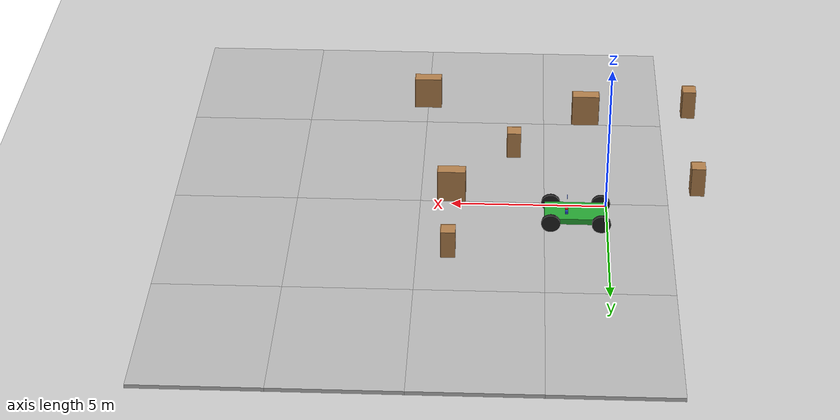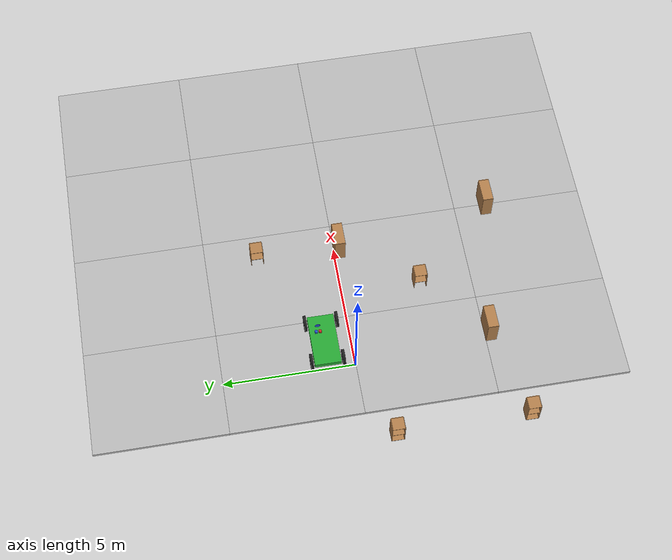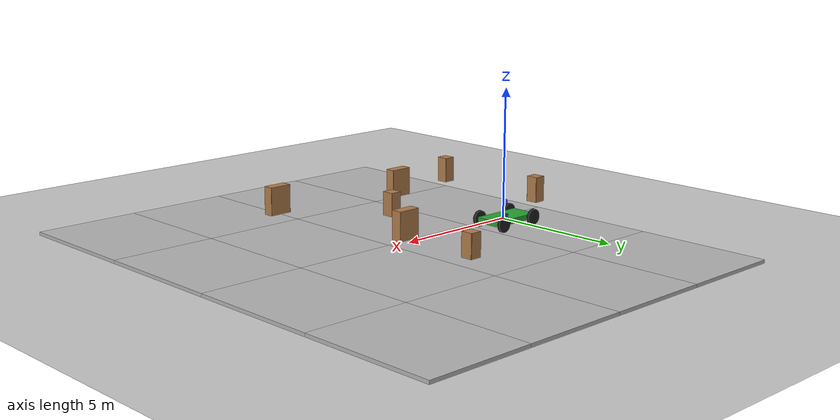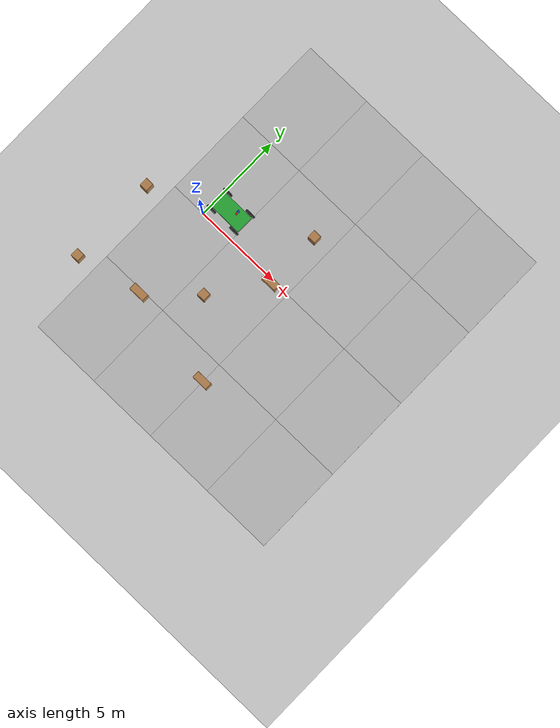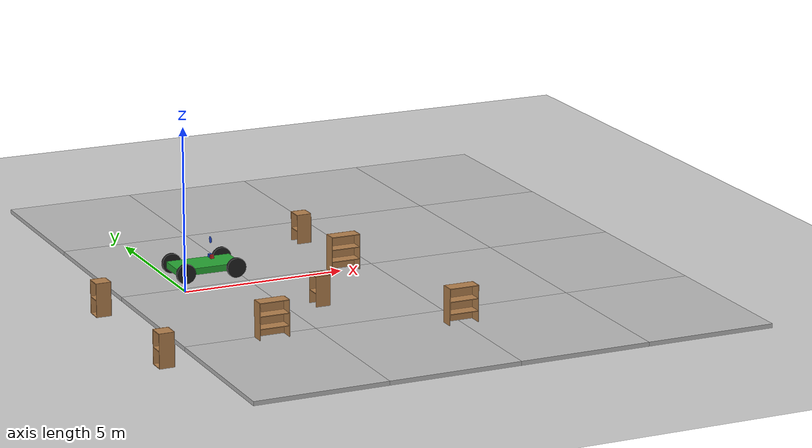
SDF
<sdf version="1.4">
 <world name="default">
  <model name="ground_plane">
   <static>1</static>
   <link name="link">
    <collision name="collision">
     <geometry><plane><normal>0 0 1</normal><size>100 100</size></plane></geometry>
     <surface><friction><ode><mu>100</mu><mu2>50</mu2></ode></friction></surface>
    </collision>
    <visual name="visual">
     <cast_shadows>0</cast_shadows>
     <geometry><plane><normal>0 0 1</normal><size>100 100</size></plane></geometry>
     <material>
      <script><uri>file://media/materials/scripts/gazebo.material</uri><name>Gazebo/Grey</name></script>
     </material>
    </visual>
    <velocity_decay><linear>0</linear><angular>0</angular></velocity_decay>
   </link>
  </model>
  <model name="mud_box_1">
   <static>1</static>
   <link name="link">
    <collision name="collision"><geometry><box><size>8 10 0.2</size></box></geometry></collision>
    <visual name="visual_1">
     <pose>-2 2.5 0 0 -0 0</pose>
     <cast_shadows>0</cast_shadows>
     <geometry><box><size>4 5 0.2</size></box></geometry>
     <material>
      <script>
       <uri>model://mud_box/materials/scripts</uri>
       <uri>model://mud_box/materials/textures</uri>
       <name>vrc/mud</name>
      </script>
     </material>
    </visual>
    <visual name="visual_2">
     <pose>2 2.5 0 0 -0 0</pose>
     <cast_shadows>0</cast_shadows>
     <geometry><box><size>4 5 0.2</size></box></geometry>
     <material>
      <script>
       <uri>model://mud_box/materials/scripts</uri>
       <uri>model://mud_box/materials/textures</uri>
       <name>vrc/mud</name>
      </script>
     </material>
    </visual>
    <visual name="visual_3">
     <pose>2 -2.5 0 0 -0 0</pose>
     <cast_shadows>0</cast_shadows>
     <geometry><box><size>4 5 0.2</size></box></geometry>
     <material>
      <script>
       <uri>model://mud_box/materials/scripts</uri>
       <uri>model://mud_box/materials/textures</uri>
       <name>vrc/mud</name>
      </script>
     </material>
    </visual>
    <visual name="visual_4">
     <pose>-2 -2.5 0 0 -0 0</pose>
     <cast_shadows>0</cast_shadows>
     <geometry><box><size>4 5 0.2</size></box></geometry>
     <material>
      <script>
       <uri>model://mud_box/materials/scripts</uri>
       <uri>model://mud_box/materials/textures</uri>
       <name>vrc/mud</name>
      </script>
     </material>
    </visual>
    <velocity_decay><linear>0</linear><angular>0</angular></velocity_decay>
   </link>
   <pose>2 5 0 0 -0 0</pose>
  </model>
  <model name="mud_box_2">
   <static>1</static>
   <link name="link">
    <collision name="collision"><geometry><box><size>8 10 0.2</size></box></geometry></collision>
    <visual name="visual_1">
     <pose>-2 2.5 0 0 -0 0</pose>
     <cast_shadows>0</cast_shadows>
     <geometry><box><size>4 5 0.2</size></box></geometry>
     <material>
      <script>
       <uri>model://mud_box/materials/scripts</uri>
       <uri>model://mud_box/materials/textures</uri>
       <name>vrc/mud</name>
      </script>
     </material>
    </visual>
    <visual name="visual_2">
     <pose>2 2.5 0 0 -0 0</pose>
     <cast_shadows>0</cast_shadows>
     <geometry><box><size>4 5 0.2</size></box></geometry>
     <material>
      <script>
       <uri>model://mud_box/materials/scripts</uri>
       <uri>model://mud_box/materials/textures</uri>
       <name>vrc/mud</name>
      </script>
     </material>
    </visual>
    <visual name="visual_3">
     <pose>2 -2.5 0 0 -0 0</pose>
     <cast_shadows>0</cast_shadows>
     <geometry><box><size>4 5 0.2</size></box></geometry>
     <material>
      <script>
       <uri>model://mud_box/materials/scripts</uri>
       <uri>model://mud_box/materials/textures</uri>
       <name>vrc/mud</name>
      </script>
     </material>
    </visual>
    <visual name="visual_4">
     <pose>-2 -2.5 0 0 -0 0</pose>
     <cast_shadows>0</cast_shadows>
     <geometry><box><size>4 5 0.2</size></box></geometry>
     <material>
      <script>
       <uri>model://mud_box/materials/scripts</uri>
       <uri>model://mud_box/materials/textures</uri>
       <name>vrc/mud</name>
      </script>
     </material>
    </visual>
    <velocity_decay><linear>0</linear><angular>0</angular></velocity_decay>
   </link>
   <pose>2 -5 0 0 -0 0</pose>
  </model>
  <model name="mud_box_3">
   <static>1</static>
   <link name="link">
    <collision name="collision"><geometry><box><size>8 10 0.2</size></box></geometry></collision>
    <visual name="visual_1">
     <pose>-2 2.5 0 0 -0 0</pose>
     <cast_shadows>0</cast_shadows>
     <geometry><box><size>4 5 0.2</size></box></geometry>
     <material>
      <script>
       <uri>model://mud_box/materials/scripts</uri>
       <uri>model://mud_box/materials/textures</uri>
       <name>vrc/mud</name>
      </script>
     </material>
    </visual>
    <visual name="visual_2">
     <pose>2 2.5 0 0 -0 0</pose>
     <cast_shadows>0</cast_shadows>
     <geometry><box><size>4 5 0.2</size></box></geometry>
     <material>
      <script>
       <uri>model://mud_box/materials/scripts</uri>
       <uri>model://mud_box/materials/textures</uri>
       <name>vrc/mud</name>
      </script>
     </material>
    </visual>
    <visual name="visual_3">
     <pose>2 -2.5 0 0 -0 0</pose>
     <cast_shadows>0</cast_shadows>
     <geometry><box><size>4 5 0.2</size></box></geometry>
     <material>
      <script>
       <uri>model://mud_box/materials/scripts</uri>
       <uri>model://mud_box/materials/textures</uri>
       <name>vrc/mud</name>
      </script>
     </material>
    </visual>
    <visual name="visual_4">
     <pose>-2 -2.5 0 0 -0 0</pose>
     <cast_shadows>0</cast_shadows>
     <geometry><box><size>4 5 0.2</size></box></geometry>
     <material>
      <script>
       <uri>model://mud_box/materials/scripts</uri>
       <uri>model://mud_box/materials/textures</uri>
       <name>vrc/mud</name>
      </script>
     </material>
    </visual>
    <velocity_decay><linear>0</linear><angular>0</angular></velocity_decay>
   </link>
   <pose>10 5 0 0 -0 0</pose>
  </model>
  <model name="mud_box_4">
   <static>1</static>
   <link name="link">
    <collision name="collision"><geometry><box><size>8 10 0.2</size></box></geometry></collision>
    <visual name="visual_1">
     <pose>-2 2.5 0 0 -0 0</pose>
     <cast_shadows>0</cast_shadows>
     <geometry><box><size>4 5 0.2</size></box></geometry>
     <material>
      <script>
       <uri>model://mud_box/materials/scripts</uri>
       <uri>model://mud_box/materials/textures</uri>
       <name>vrc/mud</name>
      </script>
     </material>
    </visual>
    <visual name="visual_2">
     <pose>2 2.5 0 0 -0 0</pose>
     <cast_shadows>0</cast_shadows>
     <geometry><box><size>4 5 0.2</size></box></geometry>
     <material>
      <script>
       <uri>model://mud_box/materials/scripts</uri>
       <uri>model://mud_box/materials/textures</uri>
       <name>vrc/mud</name>
      </script>
     </material>
    </visual>
    <visual name="visual_3">
     <pose>2 -2.5 0 0 -0 0</pose>
     <cast_shadows>0</cast_shadows>
     <geometry><box><size>4 5 0.2</size></box></geometry>
     <material>
      <script>
       <uri>model://mud_box/materials/scripts</uri>
       <uri>model://mud_box/materials/textures</uri>
       <name>vrc/mud</name>
      </script>
     </material>
    </visual>
    <visual name="visual_4">
     <pose>-2 -2.5 0 0 -0 0</pose>
     <cast_shadows>0</cast_shadows>
     <geometry><box><size>4 5 0.2</size></box></geometry>
     <material>
      <script>
       <uri>model://mud_box/materials/scripts</uri>
       <uri>model://mud_box/materials/textures</uri>
       <name>vrc/mud</name>
      </script>
     </material>
    </visual>
    <velocity_decay><linear>0</linear><angular>0</angular></velocity_decay>
   </link>
   <pose>10 -5 0 0 -0 0</pose>
  </model>
  <model name="cabinet_0">
   <static>1</static>
   <link name="cabinet_bottom_plate">
    <inertial>
     <pose>0 0 -1 0 -0 0</pose>
     <inertia><ixx>2.05</ixx><ixy>0</ixy><ixz>0</ixz><iyy>2.05</iyy><iyz>0</iyz><izz>2.05</izz></inertia>
     <mass>25</mass>
    </inertial>
    <collision name="cabinet_bottom_plate_geom">
     <pose>0 0 0.01 0 -0 0</pose>
     <geometry><box><size>0.45 0.45 0.02</size></box></geometry>
    </collision>
    <visual name="cabinet_bottom_plate_geom_visual">
     <pose>0 0 0.01 0 -0 0</pose>
     <geometry><box><size>0.45 0.45 0.02</size></box></geometry>
     <material>
      <script><uri>file://media/materials/scripts/gazebo.material</uri><name>Gazebo/Wood</name></script>
     </material>
    </visual>
    <collision name="cabinet_bottom_plate_geom_cabinet_back_plate">
     <pose>0.235 0 0.51 0 -0 0</pose>
     <geometry><box><size>0.02 0.45 1.02</size></box></geometry>
    </collision>
    <visual name="cabinet_bottom_plate_geom_cabinet_back_plate_visual">
     <pose>0.235 0 0.51 0 -0 0</pose>
     <geometry><box><size>0.02 0.45 1.02</size></box></geometry>
     <material>
      <script><uri>file://media/materials/scripts/gazebo.material</uri><name>Gazebo/Wood</name></script>
     </material>
    </visual>
    <collision name="cabinet_bottom_plate_geom_cabinet_left_plate">
     <pose>0 0.235 0.51 0 -0 0</pose>
     <geometry><box><size>0.45 0.02 1.02</size></box></geometry>
    </collision>
    <visual name="cabinet_bottom_plate_geom_cabinet_left_plate_visual">
     <pose>0 0.235 0.51 0 -0 0</pose>
     <geometry><box><size>0.45 0.02 1.02</size></box></geometry>
     <material>
      <script><uri>file://media/materials/scripts/gazebo.material</uri><name>Gazebo/Wood</name></script>
     </material>
    </visual>
    <collision name="cabinet_bottom_plate_geom_cabinet_middle_plate">
     <pose>0 0 0.51 0 -0 0</pose>
     <geometry><box><size>0.45 0.45 0.02</size></box></geometry>
    </collision>
    <visual name="cabinet_bottom_plate_geom_cabinet_middle_plate_visual">
     <pose>0 0 0.51 0 -0 0</pose>
     <geometry><box><size>0.45 0.45 0.02</size></box></geometry>
     <material>
      <script><uri>file://media/materials/scripts/gazebo.material</uri><name>Gazebo/Wood</name></script>
     </material>
    </visual>
    <collision name="cabinet_bottom_plate_geom_cabinet_right_plate">
     <pose>0 -0.235 0.51 0 -0 0</pose>
     <geometry><box><size>0.45 0.02 1.02</size></box></geometry>
    </collision>
    <visual name="cabinet_bottom_plate_geom_cabinet_right_plate_visual">
     <pose>0 -0.235 0.51 0 -0 0</pose>
     <geometry><box><size>0.45 0.02 1.02</size></box></geometry>
     <material>
      <script><uri>file://media/materials/scripts/gazebo.material</uri><name>Gazebo/Wood</name></script>
     </material>
    </visual>
    <collision name="cabinet_bottom_plate_geom_cabinet_top_plate">
     <pose>0 0 1.01 0 -0 0</pose>
     <geometry><box><size>0.45 0.45 0.02</size></box></geometry>
    </collision>
    <visual name="cabinet_bottom_plate_geom_cabinet_top_plate_visual">
     <pose>0 0 1.01 0 -0 0</pose>
     <geometry><box><size>0.45 0.45 0.02</size></box></geometry>
     <material>
      <script><uri>file://media/materials/scripts/gazebo.material</uri><name>Gazebo/Wood</name></script>
     </material>
    </visual>
    <velocity_decay><linear>0</linear><angular>0</angular></velocity_decay>
   </link>
   <pose>-3 -1 0 0 -0 0</pose>
  </model>
  <model name="cabinet_1">
   <static>1</static>
   <link name="cabinet_bottom_plate">
    <inertial>
     <pose>0 0 -1 0 -0 0</pose>
     <inertia><ixx>2.05</ixx><ixy>0</ixy><ixz>0</ixz><iyy>2.05</iyy><iyz>0</iyz><izz>2.05</izz></inertia>
     <mass>25</mass>
    </inertial>
    <collision name="cabinet_bottom_plate_geom">
     <pose>0 0 0.01 0 -0 0</pose>
     <geometry><box><size>0.45 0.45 0.02</size></box></geometry>
    </collision>
    <visual name="cabinet_bottom_plate_geom_visual">
     <pose>0 0 0.01 0 -0 0</pose>
     <geometry><box><size>0.45 0.45 0.02</size></box></geometry>
     <material>
      <script><uri>file://media/materials/scripts/gazebo.material</uri><name>Gazebo/Wood</name></script>
     </material>
    </visual>
    <collision name="cabinet_bottom_plate_geom_cabinet_back_plate">
     <pose>0.235 0 0.51 0 -0 0</pose>
     <geometry><box><size>0.02 0.45 1.02</size></box></geometry>
    </collision>
    <visual name="cabinet_bottom_plate_geom_cabinet_back_plate_visual">
     <pose>0.235 0 0.51 0 -0 0</pose>
     <geometry><box><size>0.02 0.45 1.02</size></box></geometry>
     <material>
      <script><uri>file://media/materials/scripts/gazebo.material</uri><name>Gazebo/Wood</name></script>
     </material>
    </visual>
    <collision name="cabinet_bottom_plate_geom_cabinet_left_plate">
     <pose>0 0.235 0.51 0 -0 0</pose>
     <geometry><box><size>0.45 0.02 1.02</size></box></geometry>
    </collision>
    <visual name="cabinet_bottom_plate_geom_cabinet_left_plate_visual">
     <pose>0 0.235 0.51 0 -0 0</pose>
     <geometry><box><size>0.45 0.02 1.02</size></box></geometry>
     <material>
      <script><uri>file://media/materials/scripts/gazebo.material</uri><name>Gazebo/Wood</name></script>
     </material>
    </visual>
    <collision name="cabinet_bottom_plate_geom_cabinet_middle_plate">
     <pose>0 0 0.51 0 -0 0</pose>
     <geometry><box><size>0.45 0.45 0.02</size></box></geometry>
    </collision>
    <visual name="cabinet_bottom_plate_geom_cabinet_middle_plate_visual">
     <pose>0 0 0.51 0 -0 0</pose>
     <geometry><box><size>0.45 0.45 0.02</size></box></geometry>
     <material>
      <script><uri>file://media/materials/scripts/gazebo.material</uri><name>Gazebo/Wood</name></script>
     </material>
    </visual>
    <collision name="cabinet_bottom_plate_geom_cabinet_right_plate">
     <pose>0 -0.235 0.51 0 -0 0</pose>
     <geometry><box><size>0.45 0.02 1.02</size></box></geometry>
    </collision>
    <visual name="cabinet_bottom_plate_geom_cabinet_right_plate_visual">
     <pose>0 -0.235 0.51 0 -0 0</pose>
     <geometry><box><size>0.45 0.02 1.02</size></box></geometry>
     <material>
      <script><uri>file://media/materials/scripts/gazebo.material</uri><name>Gazebo/Wood</name></script>
     </material>
    </visual>
    <collision name="cabinet_bottom_plate_geom_cabinet_top_plate">
     <pose>0 0 1.01 0 -0 0</pose>
     <geometry><box><size>0.45 0.45 0.02</size></box></geometry>
    </collision>
    <visual name="cabinet_bottom_plate_geom_cabinet_top_plate_visual">
     <pose>0 0 1.01 0 -0 0</pose>
     <geometry><box><size>0.45 0.45 0.02</size></box></geometry>
     <material>
      <script><uri>file://media/materials/scripts/gazebo.material</uri><name>Gazebo/Wood</name></script>
     </material>
    </visual>
    <velocity_decay><linear>0</linear><angular>0</angular></velocity_decay>
   </link>
   <pose>3 -3 0 0 -0 0</pose>
  </model>
  <model name="cabinet_2">
   <static>1</static>
   <link name="cabinet_bottom_plate">
    <inertial>
     <pose>0 0 -1 0 -0 0</pose>
     <inertia><ixx>2.05</ixx><ixy>0</ixy><ixz>0</ixz><iyy>2.05</iyy><iyz>0</iyz><izz>2.05</izz></inertia>
     <mass>25</mass>
    </inertial>
    <collision name="cabinet_bottom_plate_geom">
     <pose>0 0 0.01 0 -0 0</pose>
     <geometry><box><size>0.45 0.45 0.02</size></box></geometry>
    </collision>
    <visual name="cabinet_bottom_plate_geom_visual">
     <pose>0 0 0.01 0 -0 0</pose>
     <geometry><box><size>0.45 0.45 0.02</size></box></geometry>
     <material>
      <script><uri>file://media/materials/scripts/gazebo.material</uri><name>Gazebo/Wood</name></script>
     </material>
    </visual>
    <collision name="cabinet_bottom_plate_geom_cabinet_back_plate">
     <pose>0.235 0 0.51 0 -0 0</pose>
     <geometry><box><size>0.02 0.45 1.02</size></box></geometry>
    </collision>
    <visual name="cabinet_bottom_plate_geom_cabinet_back_plate_visual">
     <pose>0.235 0 0.51 0 -0 0</pose>
     <geometry><box><size>0.02 0.45 1.02</size></box></geometry>
     <material>
      <script><uri>file://media/materials/scripts/gazebo.material</uri><name>Gazebo/Wood</name></script>
     </material>
    </visual>
    <collision name="cabinet_bottom_plate_geom_cabinet_left_plate">
     <pose>0 0.235 0.51 0 -0 0</pose>
     <geometry><box><size>0.45 0.02 1.02</size></box></geometry>
    </collision>
    <visual name="cabinet_bottom_plate_geom_cabinet_left_plate_visual">
     <pose>0 0.235 0.51 0 -0 0</pose>
     <geometry><box><size>0.45 0.02 1.02</size></box></geometry>
     <material>
      <script><uri>file://media/materials/scripts/gazebo.material</uri><name>Gazebo/Wood</name></script>
     </material>
    </visual>
    <collision name="cabinet_bottom_plate_geom_cabinet_middle_plate">
     <pose>0 0 0.51 0 -0 0</pose>
     <geometry><box><size>0.45 0.45 0.02</size></box></geometry>
    </collision>
    <visual name="cabinet_bottom_plate_geom_cabinet_middle_plate_visual">
     <pose>0 0 0.51 0 -0 0</pose>
     <geometry><box><size>0.45 0.45 0.02</size></box></geometry>
     <material>
      <script><uri>file://media/materials/scripts/gazebo.material</uri><name>Gazebo/Wood</name></script>
     </material>
    </visual>
    <collision name="cabinet_bottom_plate_geom_cabinet_right_plate">
     <pose>0 -0.235 0.51 0 -0 0</pose>
     <geometry><box><size>0.45 0.02 1.02</size></box></geometry>
    </collision>
    <visual name="cabinet_bottom_plate_geom_cabinet_right_plate_visual">
     <pose>0 -0.235 0.51 0 -0 0</pose>
     <geometry><box><size>0.45 0.02 1.02</size></box></geometry>
     <material>
      <script><uri>file://media/materials/scripts/gazebo.material</uri><name>Gazebo/Wood</name></script>
     </material>
    </visual>
    <collision name="cabinet_bottom_plate_geom_cabinet_top_plate">
     <pose>0 0 1.01 0 -0 0</pose>
     <geometry><box><size>0.45 0.45 0.02</size></box></geometry>
    </collision>
    <visual name="cabinet_bottom_plate_geom_cabinet_top_plate_visual">
     <pose>0 0 1.01 0 -0 0</pose>
     <geometry><box><size>0.45 0.45 0.02</size></box></geometry>
     <material>
      <script><uri>file://media/materials/scripts/gazebo.material</uri><name>Gazebo/Wood</name></script>
     </material>
    </visual>
    <velocity_decay><linear>0</linear><angular>0</angular></velocity_decay>
   </link>
   <pose>5 3 0 0 -0 0</pose>
  </model>
  <model name="cabinet_5">
   <static>1</static>
   <link name="cabinet_bottom_plate">
    <inertial>
     <pose>0 0 -1 0 -0 0</pose>
     <inertia><ixx>2.05</ixx><ixy>0</ixy><ixz>0</ixz><iyy>2.05</iyy><iyz>0</iyz><izz>2.05</izz></inertia>
     <mass>25</mass>
    </inertial>
    <collision name="cabinet_bottom_plate_geom">
     <pose>0 0 0.01 0 -0 0</pose>
     <geometry><box><size>0.45 0.45 0.02</size></box></geometry>
    </collision>
    <visual name="cabinet_bottom_plate_geom_visual">
     <pose>0 0 0.01 0 -0 0</pose>
     <geometry><box><size>0.45 0.45 0.02</size></box></geometry>
     <material>
      <script><uri>file://media/materials/scripts/gazebo.material</uri><name>Gazebo/Wood</name></script>
     </material>
    </visual>
    <collision name="cabinet_bottom_plate_geom_cabinet_back_plate">
     <pose>0.235 0 0.51 0 -0 0</pose>
     <geometry><box><size>0.02 0.45 1.02</size></box></geometry>
    </collision>
    <visual name="cabinet_bottom_plate_geom_cabinet_back_plate_visual">
     <pose>0.235 0 0.51 0 -0 0</pose>
     <geometry><box><size>0.02 0.45 1.02</size></box></geometry>
     <material>
      <script><uri>file://media/materials/scripts/gazebo.material</uri><name>Gazebo/Wood</name></script>
     </material>
    </visual>
    <collision name="cabinet_bottom_plate_geom_cabinet_left_plate">
     <pose>0 0.235 0.51 0 -0 0</pose>
     <geometry><box><size>0.45 0.02 1.02</size></box></geometry>
    </collision>
    <visual name="cabinet_bottom_plate_geom_cabinet_left_plate_visual">
     <pose>0 0.235 0.51 0 -0 0</pose>
     <geometry><box><size>0.45 0.02 1.02</size></box></geometry>
     <material>
      <script><uri>file://media/materials/scripts/gazebo.material</uri><name>Gazebo/Wood</name></script>
     </material>
    </visual>
    <collision name="cabinet_bottom_plate_geom_cabinet_middle_plate">
     <pose>0 0 0.51 0 -0 0</pose>
     <geometry><box><size>0.45 0.45 0.02</size></box></geometry>
    </collision>
    <visual name="cabinet_bottom_plate_geom_cabinet_middle_plate_visual">
     <pose>0 0 0.51 0 -0 0</pose>
     <geometry><box><size>0.45 0.45 0.02</size></box></geometry>
     <material>
      <script><uri>file://media/materials/scripts/gazebo.material</uri><name>Gazebo/Wood</name></script>
     </material>
    </visual>
    <collision name="cabinet_bottom_plate_geom_cabinet_right_plate">
     <pose>0 -0.235 0.51 0 -0 0</pose>
     <geometry><box><size>0.45 0.02 1.02</size></box></geometry>
    </collision>
    <visual name="cabinet_bottom_plate_geom_cabinet_right_plate_visual">
     <pose>0 -0.235 0.51 0 -0 0</pose>
     <geometry><box><size>0.45 0.02 1.02</size></box></geometry>
     <material>
      <script><uri>file://media/materials/scripts/gazebo.material</uri><name>Gazebo/Wood</name></script>
     </material>
    </visual>
    <collision name="cabinet_bottom_plate_geom_cabinet_top_plate">
     <pose>0 0 1.01 0 -0 0</pose>
     <geometry><box><size>0.45 0.45 0.02</size></box></geometry>
    </collision>
    <visual name="cabinet_bottom_plate_geom_cabinet_top_plate_visual">
     <pose>0 0 1.01 0 -0 0</pose>
     <geometry><box><size>0.45 0.45 0.02</size></box></geometry>
     <material>
      <script><uri>file://media/materials/scripts/gazebo.material</uri><name>Gazebo/Wood</name></script>
     </material>
    </visual>
    <velocity_decay><linear>0</linear><angular>0</angular></velocity_decay>
   </link>
   <pose>-3 -6 0 0 -0 0</pose>
  </model>
  <model name="bookshelf_2">
   <static>1</static>
   <link name="link">
    <inertial><mass>1</mass></inertial>
    <collision name="back">
     <pose>0 0.005 0.6 0 -0 0</pose>
     <geometry><box><size>0.9 0.01 1.2</size></box></geometry>
    </collision>
    <visual name="visual1">
     <pose>0 0.005 0.6 0 -0 0</pose>
     <geometry><box><size>0.9 0.01 1.2</size></box></geometry>
     <material>
      <script><uri>file://media/materials/scripts/gazebo.material</uri><name>Gazebo/Wood</name></script>
     </material>
    </visual>
    <collision name="left_side">
     <pose>0.45 -0.195 0.6 0 -0 0</pose>
     <geometry><box><size>0.02 0.4 1.2</size></box></geometry>
    </collision>
    <visual name="visual2">
     <pose>0.45 -0.195 0.6 0 -0 0</pose>
     <geometry><box><size>0.02 0.4 1.2</size></box></geometry>
     <material>
      <script><uri>file://media/materials/scripts/gazebo.material</uri><name>Gazebo/Wood</name></script>
     </material>
    </visual>
    <collision name="right_side">
     <pose>-0.45 -0.195 0.6 0 -0 0</pose>
     <geometry><box><size>0.02 0.4 1.2</size></box></geometry>
    </collision>
    <visual name="visual3">
     <pose>-0.45 -0.195 0.6 0 -0 0</pose>
     <geometry><box><size>0.02 0.4 1.2</size></box></geometry>
     <material>
      <script><uri>file://media/materials/scripts/gazebo.material</uri><name>Gazebo/Wood</name></script>
     </material>
    </visual>
    <collision name="bottom">
     <pose>0 -0.195 0.03 0 -0 0</pose>
     <geometry><box><size>0.88 0.4 0.06</size></box></geometry>
    </collision>
    <visual name="visual4">
     <pose>0 -0.195 0.03 0 -0 0</pose>
     <geometry><box><size>0.88 0.4 0.06</size></box></geometry>
     <material>
      <script><uri>file://media/materials/scripts/gazebo.material</uri><name>Gazebo/Wood</name></script>
     </material>
    </visual>
    <collision name="top">
     <pose>0 -0.195 1.19 0 -0 0</pose>
     <geometry><box><size>0.88 0.4 0.02</size></box></geometry>
    </collision>
    <visual name="visual5">
     <pose>0 -0.195 1.19 0 -0 0</pose>
     <geometry><box><size>0.88 0.4 0.02</size></box></geometry>
     <material>
      <script><uri>file://media/materials/scripts/gazebo.material</uri><name>Gazebo/Wood</name></script>
     </material>
    </visual>
    <collision name="low_shelf">
     <pose>0 -0.195 0.43 0 -0 0</pose>
     <geometry><box><size>0.88 0.4 0.02</size></box></geometry>
    </collision>
    <visual name="visual6">
     <pose>0 -0.195 0.43 0 -0 0</pose>
     <geometry><box><size>0.88 0.4 0.02</size></box></geometry>
     <material>
      <script><uri>file://media/materials/scripts/gazebo.material</uri><name>Gazebo/Wood</name></script>
     </material>
    </visual>
    <collision name="high_shelf">
     <pose>0 -0.195 0.8 0 -0 0</pose>
     <geometry><box><size>0.88 0.4 0.02</size></box></geometry>
    </collision>
    <visual name="visual7">
     <pose>0 -0.195 0.8 0 -0 0</pose>
     <geometry><box><size>0.88 0.4 0.02</size></box></geometry>
     <material>
      <script><uri>file://media/materials/scripts/gazebo.material</uri><name>Gazebo/Wood</name></script>
     </material>
    </visual>
    <velocity_decay><linear>0</linear><angular>0</angular></velocity_decay>
   </link>
   <pose>0.578728 -5 0 0 -0 0</pose>
  </model>
  <model name="bookshelf_3">
   <static>1</static>
   <link name="link">
    <inertial><mass>1</mass></inertial>
    <collision name="back">
     <pose>0 0.005 0.6 0 -0 0</pose>
     <geometry><box><size>0.9 0.01 1.2</size></box></geometry>
    </collision>
    <visual name="visual1">
     <pose>0 0.005 0.6 0 -0 0</pose>
     <geometry><box><size>0.9 0.01 1.2</size></box></geometry>
     <material>
      <script><uri>file://media/materials/scripts/gazebo.material</uri><name>Gazebo/Wood</name></script>
     </material>
    </visual>
    <collision name="left_side">
     <pose>0.45 -0.195 0.6 0 -0 0</pose>
     <geometry><box><size>0.02 0.4 1.2</size></box></geometry>
    </collision>
    <visual name="visual2">
     <pose>0.45 -0.195 0.6 0 -0 0</pose>
     <geometry><box><size>0.02 0.4 1.2</size></box></geometry>
     <material>
      <script><uri>file://media/materials/scripts/gazebo.material</uri><name>Gazebo/Wood</name></script>
     </material>
    </visual>
    <collision name="right_side">
     <pose>-0.45 -0.195 0.6 0 -0 0</pose>
     <geometry><box><size>0.02 0.4 1.2</size></box></geometry>
    </collision>
    <visual name="visual3">
     <pose>-0.45 -0.195 0.6 0 -0 0</pose>
     <geometry><box><size>0.02 0.4 1.2</size></box></geometry>
     <material>
      <script><uri>file://media/materials/scripts/gazebo.material</uri><name>Gazebo/Wood</name></script>
     </material>
    </visual>
    <collision name="bottom">
     <pose>0 -0.195 0.03 0 -0 0</pose>
     <geometry><box><size>0.88 0.4 0.06</size></box></geometry>
    </collision>
    <visual name="visual4">
     <pose>0 -0.195 0.03 0 -0 0</pose>
     <geometry><box><size>0.88 0.4 0.06</size></box></geometry>
     <material>
      <script><uri>file://media/materials/scripts/gazebo.material</uri><name>Gazebo/Wood</name></script>
     </material>
    </visual>
    <collision name="top">
     <pose>0 -0.195 1.19 0 -0 0</pose>
     <geometry><box><size>0.88 0.4 0.02</size></box></geometry>
    </collision>
    <visual name="visual5">
     <pose>0 -0.195 1.19 0 -0 0</pose>
     <geometry><box><size>0.88 0.4 0.02</size></box></geometry>
     <material>
      <script><uri>file://media/materials/scripts/gazebo.material</uri><name>Gazebo/Wood</name></script>
     </material>
    </visual>
    <collision name="low_shelf">
     <pose>0 -0.195 0.43 0 -0 0</pose>
     <geometry><box><size>0.88 0.4 0.02</size></box></geometry>
    </collision>
    <visual name="visual6">
     <pose>0 -0.195 0.43 0 -0 0</pose>
     <geometry><box><size>0.88 0.4 0.02</size></box></geometry>
     <material>
      <script><uri>file://media/materials/scripts/gazebo.material</uri><name>Gazebo/Wood</name></script>
     </material>
    </visual>
    <collision name="high_shelf">
     <pose>0 -0.195 0.8 0 -0 0</pose>
     <geometry><box><size>0.88 0.4 0.02</size></box></geometry>
    </collision>
    <visual name="visual7">
     <pose>0 -0.195 0.8 0 -0 0</pose>
     <geometry><box><size>0.88 0.4 0.02</size></box></geometry>
     <material>
      <script><uri>file://media/materials/scripts/gazebo.material</uri><name>Gazebo/Wood</name></script>
     </material>
    </visual>
    <velocity_decay><linear>0</linear><angular>0</angular></velocity_decay>
   </link>
   <pose>5 0 0 0 -0 0</pose>
  </model>
  <model name="bookshelf_4">
   <static>1</static>
   <link name="link">
    <inertial><mass>1</mass></inertial>
    <collision name="back">
     <pose>0 0.005 0.6 0 -0 0</pose>
     <geometry><box><size>0.9 0.01 1.2</size></box></geometry>
    </collision>
    <visual name="visual1">
     <pose>0 0.005 0.6 0 -0 0</pose>
     <geometry><box><size>0.9 0.01 1.2</size></box></geometry>
     <material>
      <script><uri>file://media/materials/scripts/gazebo.material</uri><name>Gazebo/Wood</name></script>
     </material>
    </visual>
    <collision name="left_side">
     <pose>0.45 -0.195 0.6 0 -0 0</pose>
     <geometry><box><size>0.02 0.4 1.2</size></box></geometry>
    </collision>
    <visual name="visual2">
     <pose>0.45 -0.195 0.6 0 -0 0</pose>
     <geometry><box><size>0.02 0.4 1.2</size></box></geometry>
     <material>
      <script><uri>file://media/materials/scripts/gazebo.material</uri><name>Gazebo/Wood</name></script>
     </material>
    </visual>
    <collision name="right_side">
     <pose>-0.45 -0.195 0.6 0 -0 0</pose>
     <geometry><box><size>0.02 0.4 1.2</size></box></geometry>
    </collision>
    <visual name="visual3">
     <pose>-0.45 -0.195 0.6 0 -0 0</pose>
     <geometry><box><size>0.02 0.4 1.2</size></box></geometry>
     <material>
      <script><uri>file://media/materials/scripts/gazebo.material</uri><name>Gazebo/Wood</name></script>
     </material>
    </visual>
    <collision name="bottom">
     <pose>0 -0.195 0.03 0 -0 0</pose>
     <geometry><box><size>0.88 0.4 0.06</size></box></geometry>
    </collision>
    <visual name="visual4">
     <pose>0 -0.195 0.03 0 -0 0</pose>
     <geometry><box><size>0.88 0.4 0.06</size></box></geometry>
     <material>
      <script><uri>file://media/materials/scripts/gazebo.material</uri><name>Gazebo/Wood</name></script>
     </material>
    </visual>
    <collision name="top">
     <pose>0 -0.195 1.19 0 -0 0</pose>
     <geometry><box><size>0.88 0.4 0.02</size></box></geometry>
    </collision>
    <visual name="visual5">
     <pose>0 -0.195 1.19 0 -0 0</pose>
     <geometry><box><size>0.88 0.4 0.02</size></box></geometry>
     <material>
      <script><uri>file://media/materials/scripts/gazebo.material</uri><name>Gazebo/Wood</name></script>
     </material>
    </visual>
    <collision name="low_shelf">
     <pose>0 -0.195 0.43 0 -0 0</pose>
     <geometry><box><size>0.88 0.4 0.02</size></box></geometry>
    </collision>
    <visual name="visual6">
     <pose>0 -0.195 0.43 0 -0 0</pose>
     <geometry><box><size>0.88 0.4 0.02</size></box></geometry>
     <material>
      <script><uri>file://media/materials/scripts/gazebo.material</uri><name>Gazebo/Wood</name></script>
     </material>
    </visual>
    <collision name="high_shelf">
     <pose>0 -0.195 0.8 0 -0 0</pose>
     <geometry><box><size>0.88 0.4 0.02</size></box></geometry>
    </collision>
    <visual name="visual7">
     <pose>0 -0.195 0.8 0 -0 0</pose>
     <geometry><box><size>0.88 0.4 0.02</size></box></geometry>
     <material>
      <script><uri>file://media/materials/scripts/gazebo.material</uri><name>Gazebo/Wood</name></script>
     </material>
    </visual>
    <velocity_decay><linear>0</linear><angular>0</angular></velocity_decay>
   </link>
   <pose>6 -6 0 0 -0 0</pose>
  </model>
  <model name="car_0">
   <link name="chassis">
    <pose>0 0 0.3 0 -0 0</pose>
    <collision name="collision"><geometry><box><size>2 1 0.2</size></box></geometry></collision>
    <visual name="visual">
     <geometry><box><size>2 1 0.2</size></box></geometry>
     <material>
      <script><uri>file://media/materials/scripts/gazebo.material</uri><name>Gazebo/Green</name></script>
     </material>
    </visual>
    <velocity_decay><linear>0</linear><angular>0</angular></velocity_decay>
    <inertial>
     <inertia><ixx>1</ixx><ixy>0</ixy><ixz>0</ixz><iyy>1</iyy><iyz>0</iyz><izz>1</izz></inertia>
     <mass>1</mass>
    </inertial>
   </link>
   <link name="front_left_wheel">
    <pose>0.8 0.6 0.3 0 1.5707 1.5707</pose>
    <collision name="collision">
     <geometry><cylinder><radius>0.3</radius><length>0.1</length></cylinder></geometry>
    </collision>
    <visual name="visual">
     <geometry><cylinder><radius>0.3</radius><length>0.1</length></cylinder></geometry>
     <material>
      <script><uri>file://media/materials/scripts/gazebo.material</uri><name>Gazebo/Black</name></script>
     </material>
    </visual>
    <velocity_decay><linear>0</linear><angular>0</angular></velocity_decay>
    <inertial>
     <inertia><ixx>1</ixx><ixy>0</ixy><ixz>0</ixz><iyy>1</iyy><iyz>0</iyz><izz>1</izz></inertia>
     <mass>1</mass>
    </inertial>
   </link>
   <link name="front_right_wheel">
    <pose>0.8 -0.6 0.3 0 1.5707 1.5707</pose>
    <collision name="collision">
     <geometry><cylinder><radius>0.3</radius><length>0.1</length></cylinder></geometry>
    </collision>
    <visual name="visual">
     <geometry><cylinder><radius>0.3</radius><length>0.1</length></cylinder></geometry>
     <material>
      <script><uri>file://media/materials/scripts/gazebo.material</uri><name>Gazebo/Black</name></script>
     </material>
    </visual>
    <velocity_decay><linear>0</linear><angular>0</angular></velocity_decay>
    <inertial>
     <inertia><ixx>1</ixx><ixy>0</ixy><ixz>0</ixz><iyy>1</iyy><iyz>0</iyz><izz>1</izz></inertia>
     <mass>1</mass>
    </inertial>
   </link>
   <link name="back_right_wheel">
    <pose>-0.8 -0.6 0.3 0 1.5707 1.5707</pose>
    <collision name="collision">
     <geometry><cylinder><radius>0.3</radius><length>0.1</length></cylinder></geometry>
    </collision>
    <visual name="visual">
     <geometry><cylinder><radius>0.3</radius><length>0.1</length></cylinder></geometry>
     <material>
      <script><uri>file://media/materials/scripts/gazebo.material</uri><name>Gazebo/Black</name></script>
     </material>
    </visual>
    <velocity_decay><linear>0</linear><angular>0</angular></velocity_decay>
    <inertial>
     <inertia><ixx>1</ixx><ixy>0</ixy><ixz>0</ixz><iyy>1</iyy><iyz>0</iyz><izz>1</izz></inertia>
     <mass>1</mass>
    </inertial>
   </link>
   <link name="back_left_wheel">
    <pose>-0.8 0.6 0.3 0 1.5707 1.5707</pose>
    <collision name="collision">
     <geometry><cylinder><radius>0.3</radius><length>0.1</length></cylinder></geometry>
    </collision>
    <visual name="visual">
     <geometry><cylinder><radius>0.3</radius><length>0.1</length></cylinder></geometry>
     <material>
      <script><uri>file://media/materials/scripts/gazebo.material</uri><name>Gazebo/Black</name></script>
     </material>
    </visual>
    <velocity_decay><linear>0</linear><angular>0</angular></velocity_decay>
    <inertial>
     <inertia><ixx>1</ixx><ixy>0</ixy><ixz>0</ixz><iyy>1</iyy><iyz>0</iyz><izz>1</izz></inertia>
     <mass>1</mass>
    </inertial>
   </link>
   <link name="gas_pedal">
    <pose>0.3 0.1 0.5 0 -0 0</pose>
    <collision name="collision"><geometry><box><size>0.1 0.1 0.1</size></box></geometry></collision>
    <visual name="visual">
     <geometry><box><size>0.1 0.1 0.1</size></box></geometry>
     <material>
      <script><uri>file://media/materials/scripts/gazebo.material</uri><name>Gazebo/Red</name></script>
     </material>
    </visual>
    <velocity_decay><linear>0</linear><angular>0</angular></velocity_decay>
    <inertial>
     <inertia><ixx>1</ixx><ixy>0</ixy><ixz>0</ixz><iyy>1</iyy><iyz>0</iyz><izz>1</izz></inertia>
     <mass>1</mass>
    </inertial>
   </link>
   <link name="brake_pedal">
    <pose>0.3 0.25 0.5 0 -0 0</pose>
    <collision name="collision"><geometry><box><size>0.1 0.1 0.1</size></box></geometry></collision>
    <visual name="visual">
     <geometry><box><size>0.1 0.1 0.1</size></box></geometry>
     <material>
      <script><uri>file://media/materials/scripts/gazebo.material</uri><name>Gazebo/Blue</name></script>
     </material>
    </visual>
    <velocity_decay><linear>0</linear><angular>0</angular></velocity_decay>
    <inertial>
     <inertia><ixx>1</ixx><ixy>0</ixy><ixz>0</ixz><iyy>1</iyy><iyz>0</iyz><izz>1</izz></inertia>
     <mass>1</mass>
    </inertial>
   </link>
   <link name="steering_wheel">
    <pose>0.3 0.2 1 0 1.5707 0</pose>
    <collision name="collision">
     <geometry><cylinder><radius>0.1</radius><length>0.01</length></cylinder></geometry>
    </collision>
    <visual name="visual">
     <geometry><cylinder><radius>0.1</radius><length>0.01</length></cylinder></geometry>
     <material>
      <script><uri>file://media/materials/scripts/gazebo.material</uri><name>Gazebo/Blue</name></script>
     </material>
    </visual>
    <velocity_decay><linear>0</linear><angular>0</angular></velocity_decay>
    <inertial>
     <inertia><ixx>1</ixx><ixy>0</ixy><ixz>0</ixz><iyy>1</iyy><iyz>0</iyz><izz>1</izz></inertia>
     <mass>1</mass>
    </inertial>
   </link>
   <joint name="gas_joint" type="prismatic">
    <parent>chassis</parent>
    <child>gas_pedal</child>
    <axis><xyz>1 0 0</xyz><limit><lower>0</lower><upper>0.2</upper></limit></axis>
   </joint>
   <joint name="brake_joint" type="prismatic">
    <parent>chassis</parent>
    <child>brake_pedal</child>
    <axis><xyz>1 0 0</xyz><limit><lower>0</lower><upper>0.2</upper></limit></axis>
   </joint>
   <joint name="steering_joint" type="revolute">
    <parent>chassis</parent>
    <child>steering_wheel</child>
    <axis><xyz>1 0 0</xyz><limit><lower>-7.853</lower><upper>7.853</upper></limit></axis>
   </joint>
   <joint name="front_left_joint" type="revolute2">
    <parent>chassis</parent>
    <child>front_left_wheel</child>
    <axis><xyz>0 0 1</xyz><limit><lower>2.25645e-06</lower><upper>2.25645e-06</upper></limit></axis>
    <axis2><xyz>0 1 0</xyz></axis2>
    <physics><ode><limit><cfm>0</cfm><erp>0.9</erp></limit></ode></physics>
   </joint>
   <joint name="front_right_joint" type="revolute2">
    <parent>chassis</parent>
    <child>front_right_wheel</child>
    <axis><xyz>0 0 1</xyz><limit><lower>2.25645e-06</lower><upper>2.25645e-06</upper></limit></axis>
    <axis2><xyz>0 1 0</xyz></axis2>
    <physics><ode><limit><cfm>0</cfm><erp>0.9</erp></limit></ode></physics>
   </joint>
   <joint name="back_right_joint" type="revolute2">
    <parent>chassis</parent>
    <child>back_right_wheel</child>
    <axis><xyz>0 0 1</xyz><limit><lower>0</lower><upper>0</upper></limit></axis>
    <axis2><xyz>0 1 0</xyz></axis2>
    <physics><ode><limit><cfm>0</cfm><erp>0.9</erp></limit></ode></physics>
   </joint>
   <joint name="back_left_joint" type="revolute2">
    <parent>chassis</parent>
    <child>back_left_wheel</child>
    <axis><xyz>0 0 1</xyz><limit><lower>0</lower><upper>0</upper></limit></axis>
    <axis2><xyz>0 1 0</xyz></axis2>
    <physics><ode><limit><cfm>0</cfm><erp>0.9</erp></limit></ode></physics>
   </joint>
   <plugin name="vehicle" filename="libVehiclePlugin.so">
    <front_left>front_left_joint</front_left>
    <front_right>front_right_joint</front_right>
    <back_left>back_left_joint</back_left>
    <back_right>back_right_joint</back_right>
    <gas>gas_joint</gas>
    <brake>brake_joint</brake>
    <steering>steering_joint</steering>
    <front_power>10</front_power>
    <rear_power>10</rear_power>
    <tire_angle_range>0.5</tire_angle_range>
    <max_speed>10</max_speed>
    <aero_load>0.1</aero_load>
   </plugin>
   <pose>0.999407 1.02682 0.097393 -0.000272 0.000919 -0.004557</pose>
   <static>0</static>
  </model>
 </world>
</sdf>
